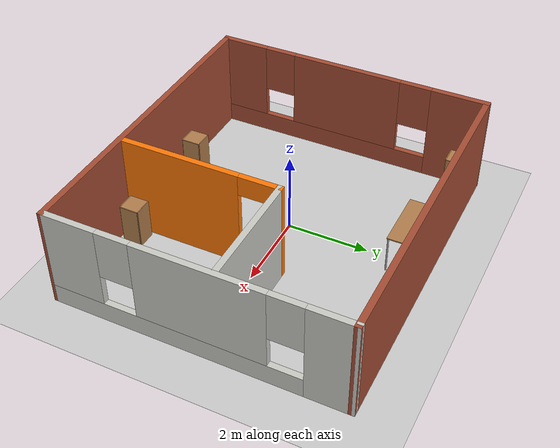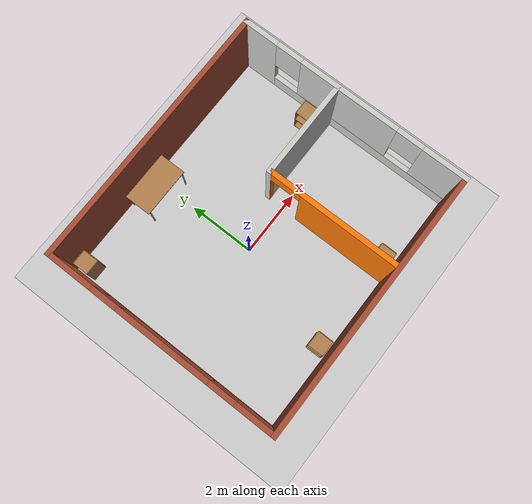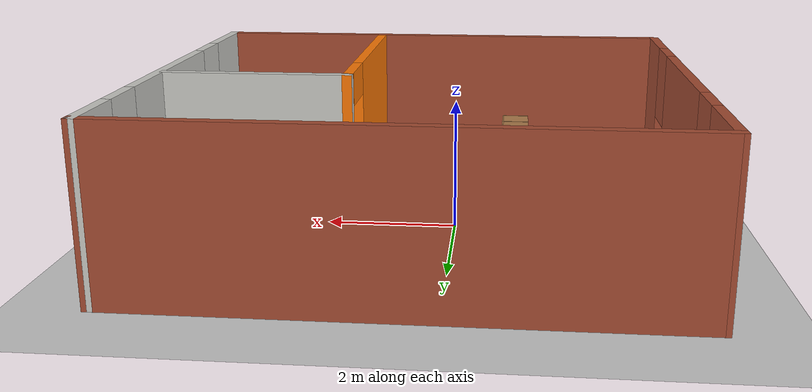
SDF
<sdf version="1.6">
 <world name="default">
  <plugin name="welcomeMessage" filename="libhello.so"/>
  <light name="sun" type="directional">
   <pose>0 0 10 0 -0 0</pose>
   <diffuse>0.8 0.8 0.8 1</diffuse>
   <specular>0.2 0.2 0.2 1</specular>
   <attenuation>
    <range>1000</range>
    <constant>0.9</constant>
    <linear>0.01</linear>
    <quadratic>0.001</quadratic>
   </attenuation>
   <direction>-0.5 0.1 -0.9</direction>
  </light>
  <model name="ground_plane">
   <static>1</static>
   <link name="link">
    <collision name="collision">
     <geometry><plane><normal>0 0 1</normal><size>100 100</size></plane></geometry>
     <surface><friction><ode><mu>100</mu><mu2>50</mu2></ode></friction></surface>
    </collision>
    <visual name="visual">
     <cast_shadows>0</cast_shadows>
     <geometry><plane><normal>0 0 1</normal><size>100 100</size></plane></geometry>
     <material>
      <script><uri>file://media/materials/scripts/gazebo.material</uri><name>Gazebo/Grey</name></script>
     </material>
    </visual>
   </link>
  </model>
  <gravity>0 0 -9.8</gravity>
  <magnetic_field>6e-06 2.3e-05 -4.2e-05</magnetic_field>
  <atmosphere type="adiabatic"/>
  <physics name="default_physics" default="0" type="ode">
   <max_step_size>0.001</max_step_size>
   <real_time_factor>1</real_time_factor>
   <real_time_update_rate>1000</real_time_update_rate>
  </physics>
  <scene><ambient>0.4 0.4 0.4 1</ambient><background>0.7 0.7 0.7 1</background><shadows>1</shadows></scene>
  <spherical_coordinates>
   <surface_model>EARTH_WGS84</surface_model>
   <latitude_deg>0</latitude_deg>
   <longitude_deg>0</longitude_deg>
   <elevation>0</elevation>
   <heading_deg>0</heading_deg>
  </spherical_coordinates>
  <model name="cabinet_0">
   <static>1</static>
   <link name="cabinet_bottom_plate">
    <inertial>
     <pose>0 0 -1 0 -0 0</pose>
     <inertia><ixx>2.05</ixx><ixy>0</ixy><ixz>0</ixz><iyy>2.05</iyy><iyz>0</iyz><izz>2.05</izz></inertia>
     <mass>25</mass>
    </inertial>
    <collision name="cabinet_bottom_plate_geom">
     <pose>0 0 0.01 0 -0 0</pose>
     <geometry><box><size>0.45 0.45 0.02</size></box></geometry>
    </collision>
    <visual name="cabinet_bottom_plate_geom_visual">
     <pose>0 0 0.01 0 -0 0</pose>
     <geometry><box><size>0.45 0.45 0.02</size></box></geometry>
     <material>
      <script><uri>file://media/materials/scripts/gazebo.material</uri><name>Gazebo/Wood</name></script>
     </material>
    </visual>
    <collision name="cabinet_bottom_plate_geom_cabinet_back_plate">
     <pose>0.235 0 0.51 0 -0 0</pose>
     <geometry><box><size>0.02 0.45 1.02</size></box></geometry>
    </collision>
    <visual name="cabinet_bottom_plate_geom_cabinet_back_plate_visual">
     <pose>0.235 0 0.51 0 -0 0</pose>
     <geometry><box><size>0.02 0.45 1.02</size></box></geometry>
     <material>
      <script><uri>file://media/materials/scripts/gazebo.material</uri><name>Gazebo/Wood</name></script>
     </material>
    </visual>
    <collision name="cabinet_bottom_plate_geom_cabinet_left_plate">
     <pose>0 0.235 0.51 0 -0 0</pose>
     <geometry><box><size>0.45 0.02 1.02</size></box></geometry>
    </collision>
    <visual name="cabinet_bottom_plate_geom_cabinet_left_plate_visual">
     <pose>0 0.235 0.51 0 -0 0</pose>
     <geometry><box><size>0.45 0.02 1.02</size></box></geometry>
     <material>
      <script><uri>file://media/materials/scripts/gazebo.material</uri><name>Gazebo/Wood</name></script>
     </material>
    </visual>
    <collision name="cabinet_bottom_plate_geom_cabinet_middle_plate">
     <pose>0 0 0.51 0 -0 0</pose>
     <geometry><box><size>0.45 0.45 0.02</size></box></geometry>
    </collision>
    <visual name="cabinet_bottom_plate_geom_cabinet_middle_plate_visual">
     <pose>0 0 0.51 0 -0 0</pose>
     <geometry><box><size>0.45 0.45 0.02</size></box></geometry>
     <material>
      <script><uri>file://media/materials/scripts/gazebo.material</uri><name>Gazebo/Wood</name></script>
     </material>
    </visual>
    <collision name="cabinet_bottom_plate_geom_cabinet_right_plate">
     <pose>0 -0.235 0.51 0 -0 0</pose>
     <geometry><box><size>0.45 0.02 1.02</size></box></geometry>
    </collision>
    <visual name="cabinet_bottom_plate_geom_cabinet_right_plate_visual">
     <pose>0 -0.235 0.51 0 -0 0</pose>
     <geometry><box><size>0.45 0.02 1.02</size></box></geometry>
     <material>
      <script><uri>file://media/materials/scripts/gazebo.material</uri><name>Gazebo/Wood</name></script>
     </material>
    </visual>
    <collision name="cabinet_bottom_plate_geom_cabinet_top_plate">
     <pose>0 0 1.01 0 -0 0</pose>
     <geometry><box><size>0.45 0.45 0.02</size></box></geometry>
    </collision>
    <visual name="cabinet_bottom_plate_geom_cabinet_top_plate_visual">
     <pose>0 0 1.01 0 -0 0</pose>
     <geometry><box><size>0.45 0.45 0.02</size></box></geometry>
     <material>
      <script><uri>file://media/materials/scripts/gazebo.material</uri><name>Gazebo/Wood</name></script>
     </material>
    </visual>
   </link>
   <pose>3.92387 1.01045 0 0 -0 0</pose>
  </model>
  <model name="cabinet_1">
   <static>1</static>
   <link name="cabinet_bottom_plate">
    <inertial>
     <pose>0 0 -1 0 -0 0</pose>
     <inertia><ixx>2.05</ixx><ixy>0</ixy><ixz>0</ixz><iyy>2.05</iyy><iyz>0</iyz><izz>2.05</izz></inertia>
     <mass>25</mass>
    </inertial>
    <collision name="cabinet_bottom_plate_geom">
     <pose>0 0 0.01 0 -0 0</pose>
     <geometry><box><size>0.45 0.45 0.02</size></box></geometry>
    </collision>
    <visual name="cabinet_bottom_plate_geom_visual">
     <pose>0 0 0.01 0 -0 0</pose>
     <geometry><box><size>0.45 0.45 0.02</size></box></geometry>
     <material>
      <script><uri>file://media/materials/scripts/gazebo.material</uri><name>Gazebo/Wood</name></script>
     </material>
    </visual>
    <collision name="cabinet_bottom_plate_geom_cabinet_back_plate">
     <pose>0.235 0 0.51 0 -0 0</pose>
     <geometry><box><size>0.02 0.45 1.02</size></box></geometry>
    </collision>
    <visual name="cabinet_bottom_plate_geom_cabinet_back_plate_visual">
     <pose>0.235 0 0.51 0 -0 0</pose>
     <geometry><box><size>0.02 0.45 1.02</size></box></geometry>
     <material>
      <script><uri>file://media/materials/scripts/gazebo.material</uri><name>Gazebo/Wood</name></script>
     </material>
    </visual>
    <collision name="cabinet_bottom_plate_geom_cabinet_left_plate">
     <pose>0 0.235 0.51 0 -0 0</pose>
     <geometry><box><size>0.45 0.02 1.02</size></box></geometry>
    </collision>
    <visual name="cabinet_bottom_plate_geom_cabinet_left_plate_visual">
     <pose>0 0.235 0.51 0 -0 0</pose>
     <geometry><box><size>0.45 0.02 1.02</size></box></geometry>
     <material>
      <script><uri>file://media/materials/scripts/gazebo.material</uri><name>Gazebo/Wood</name></script>
     </material>
    </visual>
    <collision name="cabinet_bottom_plate_geom_cabinet_middle_plate">
     <pose>0 0 0.51 0 -0 0</pose>
     <geometry><box><size>0.45 0.45 0.02</size></box></geometry>
    </collision>
    <visual name="cabinet_bottom_plate_geom_cabinet_middle_plate_visual">
     <pose>0 0 0.51 0 -0 0</pose>
     <geometry><box><size>0.45 0.45 0.02</size></box></geometry>
     <material>
      <script><uri>file://media/materials/scripts/gazebo.material</uri><name>Gazebo/Wood</name></script>
     </material>
    </visual>
    <collision name="cabinet_bottom_plate_geom_cabinet_right_plate">
     <pose>0 -0.235 0.51 0 -0 0</pose>
     <geometry><box><size>0.45 0.02 1.02</size></box></geometry>
    </collision>
    <visual name="cabinet_bottom_plate_geom_cabinet_right_plate_visual">
     <pose>0 -0.235 0.51 0 -0 0</pose>
     <geometry><box><size>0.45 0.02 1.02</size></box></geometry>
     <material>
      <script><uri>file://media/materials/scripts/gazebo.material</uri><name>Gazebo/Wood</name></script>
     </material>
    </visual>
    <collision name="cabinet_bottom_plate_geom_cabinet_top_plate">
     <pose>0 0 1.01 0 -0 0</pose>
     <geometry><box><size>0.45 0.45 0.02</size></box></geometry>
    </collision>
    <visual name="cabinet_bottom_plate_geom_cabinet_top_plate_visual">
     <pose>0 0 1.01 0 -0 0</pose>
     <geometry><box><size>0.45 0.45 0.02</size></box></geometry>
     <material>
      <script><uri>file://media/materials/scripts/gazebo.material</uri><name>Gazebo/Wood</name></script>
     </material>
    </visual>
   </link>
   <pose>-3.05455 3.09326 0 0 -0 0</pose>
  </model>
  <model name="cabinet_4">
   <static>1</static>
   <link name="cabinet_bottom_plate">
    <inertial>
     <pose>0 0 -1 0 -0 0</pose>
     <inertia><ixx>2.05</ixx><ixy>0</ixy><ixz>0</ixz><iyy>2.05</iyy><iyz>0</iyz><izz>2.05</izz></inertia>
     <mass>25</mass>
    </inertial>
    <collision name="cabinet_bottom_plate_geom">
     <pose>0 0 0.01 0 -0 0</pose>
     <geometry><box><size>0.45 0.45 0.02</size></box></geometry>
    </collision>
    <visual name="cabinet_bottom_plate_geom_visual">
     <pose>0 0 0.01 0 -0 0</pose>
     <geometry><box><size>0.45 0.45 0.02</size></box></geometry>
     <material>
      <script><uri>file://media/materials/scripts/gazebo.material</uri><name>Gazebo/Wood</name></script>
     </material>
    </visual>
    <collision name="cabinet_bottom_plate_geom_cabinet_back_plate">
     <pose>0.235 0 0.51 0 -0 0</pose>
     <geometry><box><size>0.02 0.45 1.02</size></box></geometry>
    </collision>
    <visual name="cabinet_bottom_plate_geom_cabinet_back_plate_visual">
     <pose>0.235 0 0.51 0 -0 0</pose>
     <geometry><box><size>0.02 0.45 1.02</size></box></geometry>
     <material>
      <script><uri>file://media/materials/scripts/gazebo.material</uri><name>Gazebo/Wood</name></script>
     </material>
    </visual>
    <collision name="cabinet_bottom_plate_geom_cabinet_left_plate">
     <pose>0 0.235 0.51 0 -0 0</pose>
     <geometry><box><size>0.45 0.02 1.02</size></box></geometry>
    </collision>
    <visual name="cabinet_bottom_plate_geom_cabinet_left_plate_visual">
     <pose>0 0.235 0.51 0 -0 0</pose>
     <geometry><box><size>0.45 0.02 1.02</size></box></geometry>
     <material>
      <script><uri>file://media/materials/scripts/gazebo.material</uri><name>Gazebo/Wood</name></script>
     </material>
    </visual>
    <collision name="cabinet_bottom_plate_geom_cabinet_middle_plate">
     <pose>0 0 0.51 0 -0 0</pose>
     <geometry><box><size>0.45 0.45 0.02</size></box></geometry>
    </collision>
    <visual name="cabinet_bottom_plate_geom_cabinet_middle_plate_visual">
     <pose>0 0 0.51 0 -0 0</pose>
     <geometry><box><size>0.45 0.45 0.02</size></box></geometry>
     <material>
      <script><uri>file://media/materials/scripts/gazebo.material</uri><name>Gazebo/Wood</name></script>
     </material>
    </visual>
    <collision name="cabinet_bottom_plate_geom_cabinet_right_plate">
     <pose>0 -0.235 0.51 0 -0 0</pose>
     <geometry><box><size>0.45 0.02 1.02</size></box></geometry>
    </collision>
    <visual name="cabinet_bottom_plate_geom_cabinet_right_plate_visual">
     <pose>0 -0.235 0.51 0 -0 0</pose>
     <geometry><box><size>0.45 0.02 1.02</size></box></geometry>
     <material>
      <script><uri>file://media/materials/scripts/gazebo.material</uri><name>Gazebo/Wood</name></script>
     </material>
    </visual>
    <collision name="cabinet_bottom_plate_geom_cabinet_top_plate">
     <pose>0 0 1.01 0 -0 0</pose>
     <geometry><box><size>0.45 0.45 0.02</size></box></geometry>
    </collision>
    <visual name="cabinet_bottom_plate_geom_cabinet_top_plate_visual">
     <pose>0 0 1.01 0 -0 0</pose>
     <geometry><box><size>0.45 0.45 0.02</size></box></geometry>
     <material>
      <script><uri>file://media/materials/scripts/gazebo.material</uri><name>Gazebo/Wood</name></script>
     </material>
    </visual>
   </link>
   <pose>1.95236 -3.03066 0 0 -0 0</pose>
  </model>
  <model name="cabinet_5">
   <static>1</static>
   <link name="cabinet_bottom_plate">
    <inertial>
     <pose>0 0 -1 0 -0 0</pose>
     <inertia><ixx>2.05</ixx><ixy>0</ixy><ixz>0</ixz><iyy>2.05</iyy><iyz>0</iyz><izz>2.05</izz></inertia>
     <mass>25</mass>
    </inertial>
    <collision name="cabinet_bottom_plate_geom">
     <pose>0 0 0.01 0 -0 0</pose>
     <geometry><box><size>0.45 0.45 0.02</size></box></geometry>
    </collision>
    <visual name="cabinet_bottom_plate_geom_visual">
     <pose>0 0 0.01 0 -0 0</pose>
     <geometry><box><size>0.45 0.45 0.02</size></box></geometry>
     <material>
      <script><uri>file://media/materials/scripts/gazebo.material</uri><name>Gazebo/Wood</name></script>
     </material>
    </visual>
    <collision name="cabinet_bottom_plate_geom_cabinet_back_plate">
     <pose>0.235 0 0.51 0 -0 0</pose>
     <geometry><box><size>0.02 0.45 1.02</size></box></geometry>
    </collision>
    <visual name="cabinet_bottom_plate_geom_cabinet_back_plate_visual">
     <pose>0.235 0 0.51 0 -0 0</pose>
     <geometry><box><size>0.02 0.45 1.02</size></box></geometry>
     <material>
      <script><uri>file://media/materials/scripts/gazebo.material</uri><name>Gazebo/Wood</name></script>
     </material>
    </visual>
    <collision name="cabinet_bottom_plate_geom_cabinet_left_plate">
     <pose>0 0.235 0.51 0 -0 0</pose>
     <geometry><box><size>0.45 0.02 1.02</size></box></geometry>
    </collision>
    <visual name="cabinet_bottom_plate_geom_cabinet_left_plate_visual">
     <pose>0 0.235 0.51 0 -0 0</pose>
     <geometry><box><size>0.45 0.02 1.02</size></box></geometry>
     <material>
      <script><uri>file://media/materials/scripts/gazebo.material</uri><name>Gazebo/Wood</name></script>
     </material>
    </visual>
    <collision name="cabinet_bottom_plate_geom_cabinet_middle_plate">
     <pose>0 0 0.51 0 -0 0</pose>
     <geometry><box><size>0.45 0.45 0.02</size></box></geometry>
    </collision>
    <visual name="cabinet_bottom_plate_geom_cabinet_middle_plate_visual">
     <pose>0 0 0.51 0 -0 0</pose>
     <geometry><box><size>0.45 0.45 0.02</size></box></geometry>
     <material>
      <script><uri>file://media/materials/scripts/gazebo.material</uri><name>Gazebo/Wood</name></script>
     </material>
    </visual>
    <collision name="cabinet_bottom_plate_geom_cabinet_right_plate">
     <pose>0 -0.235 0.51 0 -0 0</pose>
     <geometry><box><size>0.45 0.02 1.02</size></box></geometry>
    </collision>
    <visual name="cabinet_bottom_plate_geom_cabinet_right_plate_visual">
     <pose>0 -0.235 0.51 0 -0 0</pose>
     <geometry><box><size>0.45 0.02 1.02</size></box></geometry>
     <material>
      <script><uri>file://media/materials/scripts/gazebo.material</uri><name>Gazebo/Wood</name></script>
     </material>
    </visual>
    <collision name="cabinet_bottom_plate_geom_cabinet_top_plate">
     <pose>0 0 1.01 0 -0 0</pose>
     <geometry><box><size>0.45 0.45 0.02</size></box></geometry>
    </collision>
    <visual name="cabinet_bottom_plate_geom_cabinet_top_plate_visual">
     <pose>0 0 1.01 0 -0 0</pose>
     <geometry><box><size>0.45 0.45 0.02</size></box></geometry>
     <material>
      <script><uri>file://media/materials/scripts/gazebo.material</uri><name>Gazebo/Wood</name></script>
     </material>
    </visual>
   </link>
   <pose>-0.940003 -3.09029 0 0 -0 0</pose>
  </model>
  <model name="table">
   <static>1</static>
   <link name="link">
    <collision name="surface">
     <pose>0 0 1 0 -0 0</pose>
     <geometry><box><size>1.5 0.8 0.03</size></box></geometry>
     <surface><friction><ode><mu>0.6</mu><mu2>0.6</mu2></ode></friction></surface>
    </collision>
    <visual name="visual1">
     <pose>0 0 1 0 -0 0</pose>
     <geometry><box><size>1.5 0.8 0.03</size></box></geometry>
     <material>
      <script><uri>file://media/materials/scripts/gazebo.material</uri><name>Gazebo/Wood</name></script>
     </material>
    </visual>
    <collision name="front_left_leg">
     <pose>0.68 0.38 0.5 0 -0 0</pose>
     <geometry><cylinder><radius>0.02</radius><length>1</length></cylinder></geometry>
    </collision>
    <visual name="front_left_leg">
     <pose>0.68 0.38 0.5 0 -0 0</pose>
     <geometry><cylinder><radius>0.02</radius><length>1</length></cylinder></geometry>
     <material>
      <script><uri>file://media/materials/scripts/gazebo.material</uri><name>Gazebo/Grey</name></script>
     </material>
    </visual>
    <collision name="front_right_leg">
     <pose>0.68 -0.38 0.5 0 -0 0</pose>
     <geometry><cylinder><radius>0.02</radius><length>1</length></cylinder></geometry>
    </collision>
    <visual name="front_right_leg">
     <pose>0.68 -0.38 0.5 0 -0 0</pose>
     <geometry><cylinder><radius>0.02</radius><length>1</length></cylinder></geometry>
     <material>
      <script><uri>file://media/materials/scripts/gazebo.material</uri><name>Gazebo/Grey</name></script>
     </material>
    </visual>
    <collision name="back_right_leg">
     <pose>-0.68 -0.38 0.5 0 -0 0</pose>
     <geometry><cylinder><radius>0.02</radius><length>1</length></cylinder></geometry>
    </collision>
    <visual name="back_right_leg">
     <pose>-0.68 -0.38 0.5 0 -0 0</pose>
     <geometry><cylinder><radius>0.02</radius><length>1</length></cylinder></geometry>
     <material>
      <script><uri>file://media/materials/scripts/gazebo.material</uri><name>Gazebo/Grey</name></script>
     </material>
    </visual>
    <collision name="back_left_leg">
     <pose>-0.68 0.38 0.5 0 -0 0</pose>
     <geometry><cylinder><radius>0.02</radius><length>1</length></cylinder></geometry>
    </collision>
    <visual name="back_left_leg">
     <pose>-0.68 0.38 0.5 0 -0 0</pose>
     <geometry><cylinder><radius>0.02</radius><length>1</length></cylinder></geometry>
     <material>
      <script><uri>file://media/materials/scripts/gazebo.material</uri><name>Gazebo/Grey</name></script>
     </material>
    </visual>
   </link>
   <pose>-0.277074 3.00115 0 0 -0 0</pose>
  </model>
  <model name="myworld4">
   <pose>0.502737 0.020836 0 0 -0 0</pose>
   <link name="Wall_37">
    <collision name="Wall_37_Collision">
     <geometry><box><size>8 0.15 2.5</size></box></geometry>
     <pose>0 0 1.25 0 -0 0</pose>
    </collision>
    <visual name="Wall_37_Visual">
     <pose>0 0 1.25 0 -0 0</pose>
     <geometry><box><size>8 0.15 2.5</size></box></geometry>
     <material>
      <script><uri>file://media/materials/scripts/gazebo.material</uri><name>Gazebo/Bricks</name></script>
      <ambient>1 1 1 1</ambient>
     </material>
     <meta><layer>0</layer></meta>
    </visual>
    <pose>-0.001548 -3.49195 0 0 -0 3.14159</pose>
   </link>
   <link name="Wall_42">
    <collision name="Wall_42_Collision">
     <geometry><box><size>3 0.15 2.5</size></box></geometry>
     <pose>0 0 1.25 0 -0 0</pose>
    </collision>
    <visual name="Wall_42_Visual">
     <pose>0 0 1.25 0 -0 0</pose>
     <geometry><box><size>3 0.15 2.5</size></box></geometry>
     <material>
      <script><uri>file://media/materials/scripts/gazebo.material</uri><name>Gazebo/CeilingTiled</name></script>
      <ambient>1 0.764706 0.305882 1</ambient>
     </material>
     <meta><layer>0</layer></meta>
    </visual>
    <pose>2.49845 0.50805 0 0 -0 0</pose>
   </link>
   <link name="Wall_44">
    <pose>1.07345 -1.41695 0 0 0 -1.5708</pose>
    <visual name="Wall_44_Visual_0">
     <pose>-1.92061 0 1.25 0 -0 0</pose>
     <geometry><box><size>0.158786 0.15 2.5</size></box></geometry>
     <material>
      <script><uri>file://media/materials/scripts/gazebo.material</uri><name>Gazebo/Grey</name></script>
      <ambient>0.996078 0.47451 0.0196078 1</ambient>
     </material>
     <meta><layer>0</layer></meta>
    </visual>
    <collision name="Wall_44_Collision_0">
     <geometry><box><size>0.158786 0.15 2.5</size></box></geometry>
     <pose>-1.92061 0 1.25 0 -0 0</pose>
    </collision>
    <visual name="Wall_44_Visual_1">
     <pose>0.529393 0 1.25 0 -0 0</pose>
     <geometry><box><size>2.94121 0.15 2.5</size></box></geometry>
     <material>
      <script><uri>file://media/materials/scripts/gazebo.material</uri><name>Gazebo/Grey</name></script>
      <ambient>0.996078 0.47451 0.0196078 1</ambient>
     </material>
     <meta><layer>0</layer></meta>
    </visual>
    <collision name="Wall_44_Collision_1">
     <geometry><box><size>2.94121 0.15 2.5</size></box></geometry>
     <pose>0.529393 0 1.25 0 -0 0</pose>
    </collision>
    <visual name="Wall_44_Visual_2">
     <pose>-1.39121 0 2.25 0 -0 0</pose>
     <geometry><box><size>0.9 0.15 0.5</size></box></geometry>
     <material>
      <script><uri>file://media/materials/scripts/gazebo.material</uri><name>Gazebo/Grey</name></script>
      <ambient>0.996078 0.47451 0.0196078 1</ambient>
     </material>
     <meta><layer>0</layer></meta>
    </visual>
    <collision name="Wall_44_Collision_2">
     <geometry><box><size>0.9 0.15 0.5</size></box></geometry>
     <pose>-1.39121 0 2.25 0 -0 0</pose>
    </collision>
   </link>
   <link name="Wall_46">
    <collision name="Wall_46_Collision">
     <geometry><box><size>8 0.15 2.5</size></box></geometry>
     <pose>0 0 1.25 0 -0 0</pose>
    </collision>
    <visual name="Wall_46_Visual">
     <pose>0 0 1.25 0 -0 0</pose>
     <geometry><box><size>8 0.15 2.5</size></box></geometry>
     <material>
      <script><uri>file://media/materials/scripts/gazebo.material</uri><name>Gazebo/Bricks</name></script>
      <ambient>1 1 1 1</ambient>
     </material>
     <meta><layer>0</layer></meta>
    </visual>
    <pose>0.001548 3.49195 0 0 -0 0</pose>
   </link>
   <link name="Wall_48">
    <pose>-3.925 0 0 0 0 -1.57124</pose>
    <visual name="Wall_48_Visual_0">
     <pose>-2.84509 0 1.25 0 -0 0</pose>
     <geometry><box><size>1.44372 0.15 2.5</size></box></geometry>
     <material>
      <script><uri>file://media/materials/scripts/gazebo.material</uri><name>Gazebo/Bricks</name></script>
      <ambient>1 1 1 1</ambient>
     </material>
     <meta><layer>0</layer></meta>
    </visual>
    <collision name="Wall_48_Collision_0">
     <geometry><box><size>1.44372 0.15 2.5</size></box></geometry>
     <pose>-2.84509 0 1.25 0 -0 0</pose>
    </collision>
    <visual name="Wall_48_Visual_1">
     <pose>0.721861 0 0.25 0 -0 0</pose>
     <geometry><box><size>5.69018 0.15 0.5</size></box></geometry>
     <material>
      <script><uri>file://media/materials/scripts/gazebo.material</uri><name>Gazebo/Bricks</name></script>
      <ambient>1 1 1 1</ambient>
     </material>
     <meta><layer>0</layer></meta>
    </visual>
    <collision name="Wall_48_Collision_1">
     <geometry><box><size>5.69018 0.15 0.5</size></box></geometry>
     <pose>0.721861 0 0.25 0 -0 0</pose>
    </collision>
    <visual name="Wall_48_Visual_2">
     <pose>0.095719 0 1.5 0 -0 0</pose>
     <geometry><box><size>2.83789 0.15 2</size></box></geometry>
     <material>
      <script><uri>file://media/materials/scripts/gazebo.material</uri><name>Gazebo/Bricks</name></script>
      <ambient>1 1 1 1</ambient>
     </material>
     <meta><layer>0</layer></meta>
    </visual>
    <collision name="Wall_48_Collision_2">
     <geometry><box><size>2.83789 0.15 2</size></box></geometry>
     <pose>0.095719 0 1.5 0 -0 0</pose>
    </collision>
    <visual name="Wall_48_Visual_3">
     <pose>2.94081 0 1.5 0 -0 0</pose>
     <geometry><box><size>1.25229 0.15 2</size></box></geometry>
     <material>
      <script><uri>file://media/materials/scripts/gazebo.material</uri><name>Gazebo/Bricks</name></script>
      <ambient>1 1 1 1</ambient>
     </material>
     <meta><layer>0</layer></meta>
    </visual>
    <collision name="Wall_48_Collision_3">
     <geometry><box><size>1.25229 0.15 2</size></box></geometry>
     <pose>2.94081 0 1.5 0 -0 0</pose>
    </collision>
    <visual name="Wall_48_Visual_4">
     <pose>-1.72323 0 1.9 0 -0 0</pose>
     <geometry><box><size>0.8 0.15 1.2</size></box></geometry>
     <material>
      <script><uri>file://media/materials/scripts/gazebo.material</uri><name>Gazebo/Bricks</name></script>
      <ambient>1 1 1 1</ambient>
     </material>
     <meta><layer>0</layer></meta>
    </visual>
    <collision name="Wall_48_Collision_4">
     <geometry><box><size>0.8 0.15 1.2</size></box></geometry>
     <pose>-1.72323 0 1.9 0 -0 0</pose>
    </collision>
    <visual name="Wall_48_Visual_5">
     <pose>1.91467 0 1.9 0 -0 0</pose>
     <geometry><box><size>0.8 0.15 1.2</size></box></geometry>
     <material>
      <script><uri>file://media/materials/scripts/gazebo.material</uri><name>Gazebo/Bricks</name></script>
      <ambient>1 1 1 1</ambient>
     </material>
     <meta><layer>0</layer></meta>
    </visual>
    <collision name="Wall_48_Collision_5">
     <geometry><box><size>0.8 0.15 1.2</size></box></geometry>
     <pose>1.91467 0 1.9 0 -0 0</pose>
    </collision>
   </link>
   <link name="Wall_50">
    <pose>3.925 0 0 0 0 -1.57124</pose>
    <visual name="Wall_50_Visual_0">
     <pose>-3.01128 0 1.25 0 -0 0</pose>
     <geometry><box><size>1.11134 0.15 2.5</size></box></geometry>
     <material>
      <script><uri>file://media/materials/scripts/gazebo.material</uri><name>Gazebo/CeilingTiled</name></script>
      <ambient>0.435294 0.796078 0.67451 1</ambient>
     </material>
     <meta><layer>0</layer></meta>
    </visual>
    <collision name="Wall_50_Collision_0">
     <geometry><box><size>1.11134 0.15 2.5</size></box></geometry>
     <pose>-3.01128 0 1.25 0 -0 0</pose>
    </collision>
    <visual name="Wall_50_Visual_1">
     <pose>0.55567 0 0.25 0 -0 0</pose>
     <geometry><box><size>6.02256 0.15 0.5</size></box></geometry>
     <material>
      <script><uri>file://media/materials/scripts/gazebo.material</uri><name>Gazebo/CeilingTiled</name></script>
      <ambient>0.435294 0.796078 0.67451 1</ambient>
     </material>
     <meta><layer>0</layer></meta>
    </visual>
    <collision name="Wall_50_Collision_1">
     <geometry><box><size>6.02256 0.15 0.5</size></box></geometry>
     <pose>0.55567 0 0.25 0 -0 0</pose>
    </collision>
    <visual name="Wall_50_Visual_2">
     <pose>-0.13168 0 1.5 0 -0 0</pose>
     <geometry><box><size>3.04786 0.15 2</size></box></geometry>
     <material>
      <script><uri>file://media/materials/scripts/gazebo.material</uri><name>Gazebo/CeilingTiled</name></script>
      <ambient>0.435294 0.796078 0.67451 1</ambient>
     </material>
     <meta><layer>0</layer></meta>
    </visual>
    <collision name="Wall_50_Collision_2">
     <geometry><box><size>3.04786 0.15 2</size></box></geometry>
     <pose>-0.13168 0 1.5 0 -0 0</pose>
    </collision>
    <visual name="Wall_50_Visual_3">
     <pose>2.8796 0 1.5 0 -0 0</pose>
     <geometry><box><size>1.3747 0.15 2</size></box></geometry>
     <material>
      <script><uri>file://media/materials/scripts/gazebo.material</uri><name>Gazebo/CeilingTiled</name></script>
      <ambient>0.435294 0.796078 0.67451 1</ambient>
     </material>
     <meta><layer>0</layer></meta>
    </visual>
    <collision name="Wall_50_Collision_3">
     <geometry><box><size>1.3747 0.15 2</size></box></geometry>
     <pose>2.8796 0 1.5 0 -0 0</pose>
    </collision>
    <visual name="Wall_50_Visual_4">
     <pose>-2.05561 0 1.9 0 -0 0</pose>
     <geometry><box><size>0.8 0.15 1.2</size></box></geometry>
     <material>
      <script><uri>file://media/materials/scripts/gazebo.material</uri><name>Gazebo/CeilingTiled</name></script>
      <ambient>0.435294 0.796078 0.67451 1</ambient>
     </material>
     <meta><layer>0</layer></meta>
    </visual>
    <collision name="Wall_50_Collision_4">
     <geometry><box><size>0.8 0.15 1.2</size></box></geometry>
     <pose>-2.05561 0 1.9 0 -0 0</pose>
    </collision>
    <visual name="Wall_50_Visual_5">
     <pose>1.79225 0 1.9 0 -0 0</pose>
     <geometry><box><size>0.8 0.15 1.2</size></box></geometry>
     <material>
      <script><uri>file://media/materials/scripts/gazebo.material</uri><name>Gazebo/CeilingTiled</name></script>
      <ambient>0.435294 0.796078 0.67451 1</ambient>
     </material>
     <meta><layer>0</layer></meta>
    </visual>
    <collision name="Wall_50_Collision_5">
     <geometry><box><size>0.8 0.15 1.2</size></box></geometry>
     <pose>1.79225 0 1.9 0 -0 0</pose>
    </collision>
   </link>
   <static>1</static>
  </model>
 </world>
</sdf>
